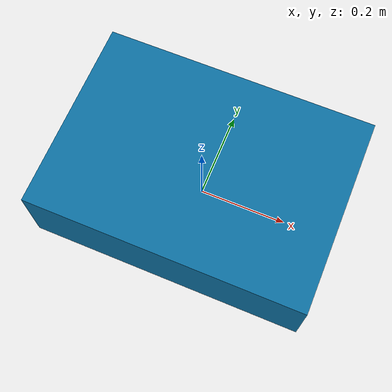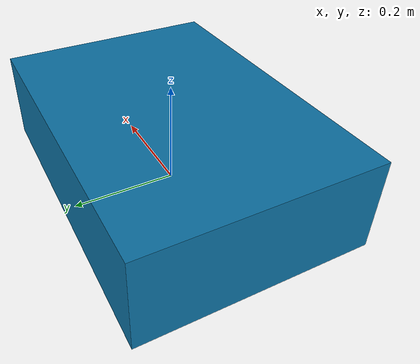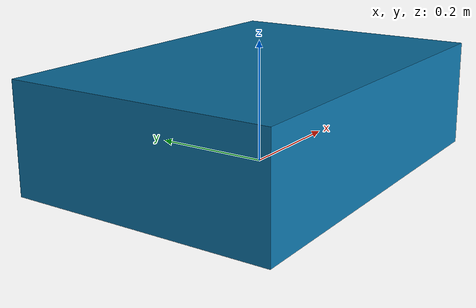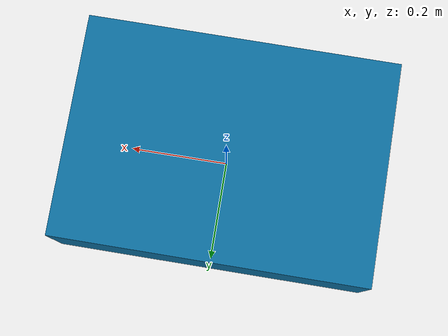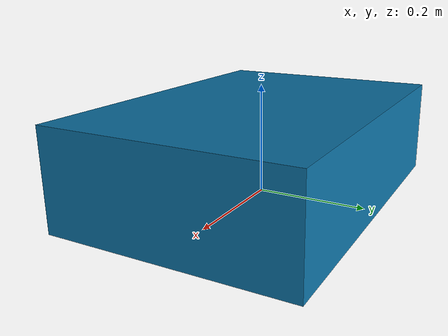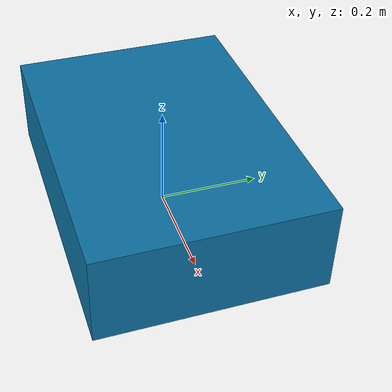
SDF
<?xml version="1.0"?>
<sdf version="1.6">
  <!-- 역할: 렌더 카메라 없이 /cmd_vel, /odom, /scan만 검증하는 최소 Waver 모델이다. -->
  <model name="waver_safety_sim">
    <static>false</static>
    <pose>0 0 0.08 0 0 0</pose>

    <!-- 역할: 차체 관성/충돌/시각화를 단순 박스로 표현해 headless 안정성을 높인다. -->
    <link name="base_link">
      <inertial>
        <mass>12.0</mass>
        <inertia>
          <ixx>0.22</ixx>
          <iyy>0.35</iyy>
          <izz>0.45</izz>
          <ixy>0.0</ixy>
          <ixz>0.0</ixz>
          <iyz>0.0</iyz>
        </inertia>
      </inertial>
      <collision name="base_collision">
        <geometry>
          <box>
            <size>0.62 0.44 0.18</size>
          </box>
        </geometry>
      </collision>
      <visual name="base_visual">
        <geometry>
          <box>
            <size>0.62 0.44 0.18</size>
          </box>
        </geometry>
        <material>
          <ambient>0.05 0.22 0.32 1.0</ambient>
          <diffuse>0.05 0.45 0.65 1.0</diffuse>
        </material>
      </visual>

      <!-- 역할: safety layer 검증용 2D LaserScan이다. z/공중 객체 판별용이 아니다. -->
      <sensor name="front_lidar" type="ray">
        <pose>0.42 0 0.22 0 0 0</pose>
        <always_on>true</always_on>
        <visualize>false</visualize>
        <update_rate>10</update_rate>
        <ray>
          <scan>
            <horizontal>
              <samples>181</samples>
              <resolution>1</resolution>
              <min_angle>-1.5708</min_angle>
              <max_angle>1.5708</max_angle>
            </horizontal>
          </scan>
          <range>
            <min>0.08</min>
            <max>8.0</max>
            <resolution>0.01</resolution>
          </range>
        </ray>
        <plugin name="waver_laserscan" filename="libgazebo_ros_ray_sensor.so">
          <ros>
            <remapping>~/out:=scan</remapping>
          </ros>
          <output_type>sensor_msgs/LaserScan</output_type>
          <frame_name>base_link</frame_name>
        </plugin>
      </sensor>
    </link>

    <!-- 역할: 실제 바퀴 물리는 생략하고 /cmd_vel planar 이동과 /odom 발행만 검증한다. -->
    <plugin name="waver_planar_move" filename="libgazebo_ros_planar_move.so">
      <commandTopic>cmd_vel</commandTopic>
      <odometryTopic>odom</odometryTopic>
      <odometryFrame>odom</odometryFrame>
      <robotBaseFrame>base_link</robotBaseFrame>
      <odometryRate>20.0</odometryRate>
    </plugin>
  </model>
</sdf>
